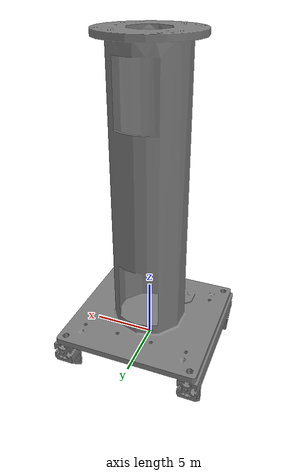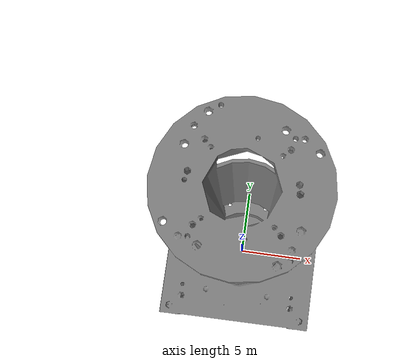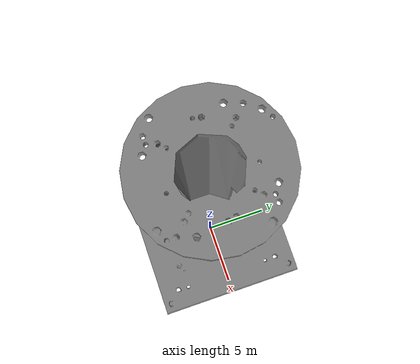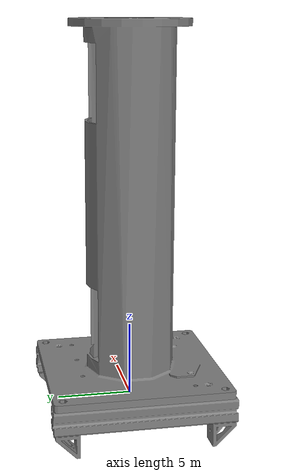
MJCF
<mujoco model="static_pedestal_with_mount">
  <default>
    <default class="visual">
      <geom group="2" type="mesh" contype="0" conaffinity="0"/>
    </default>
    <default class="collision">
      <geom group="3" type="mesh"/>
    </default>
  </default>
  <asset>
    <material name="mtl_static_pedestal_with_mount" specular="0.20000000000000004" shininess="1.0" rgba="0.50196078 0.50196078 0.50196078 1.0"/>
    <mesh file="static_pedestal_with_mount.obj"/>
  </asset>
  <worldbody>
    <body name="static_pedestal_with_mount">
      <geom material="mtl_static_pedestal_with_mount" mesh="static_pedestal_with_mount" class="visual"/>
      <geom mesh="static_pedestal_with_mount" class="collision"/>
    </body>
  </worldbody>
</mujoco>
